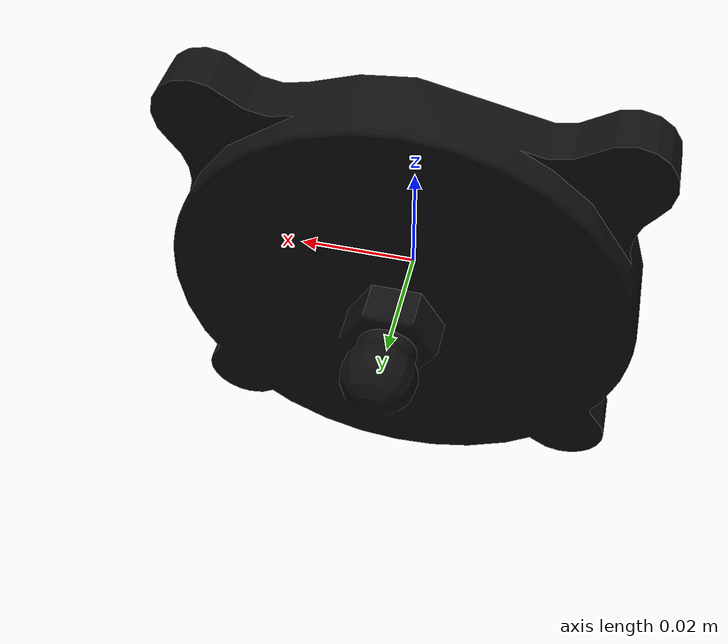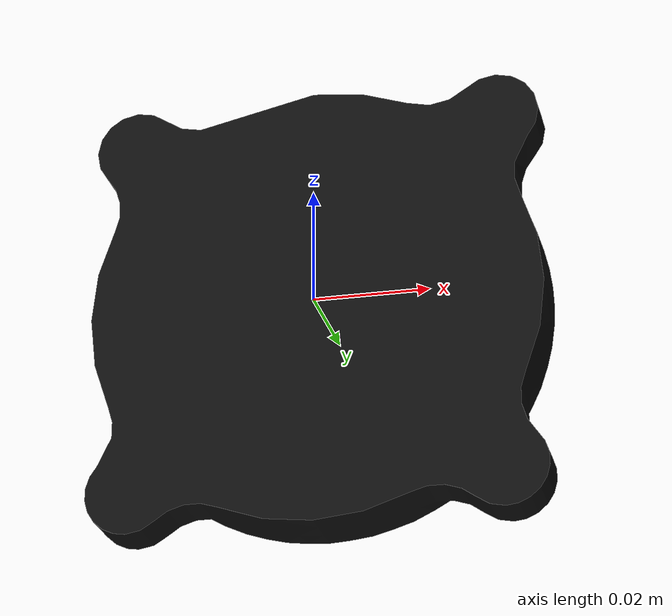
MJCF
<mujoco model="adjustable_tool_base">
  <default>
    <default class="visual">
      <geom group="2" type="mesh" contype="0" conaffinity="0"/>
    </default>
    <default class="collision">
      <geom group="3" type="mesh"/>
    </default>
  </default>
  <asset>
    <material name="mat0" specular="0.01019" shininess="0.25" rgba="0.05222 0.05222 0.05222 1.0"/>
    <mesh file="adjustable_tool_base.obj"/>
  </asset>
  <worldbody>
    <body name="adjustable_tool_base">
      <geom material="mat0" mesh="adjustable_tool_base" class="visual"/>
      <geom mesh="adjustable_tool_base" class="collision"/>
    </body>
  </worldbody>
</mujoco>
